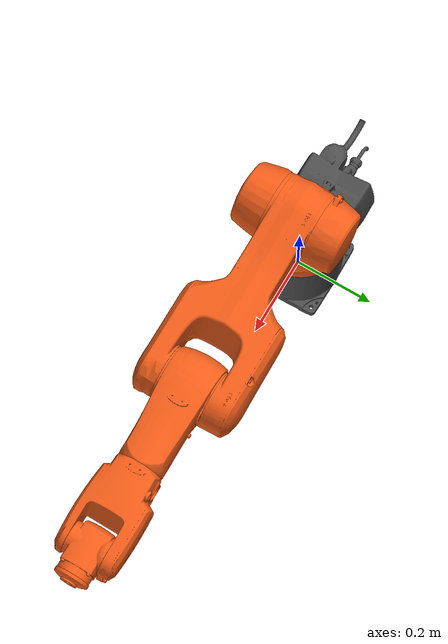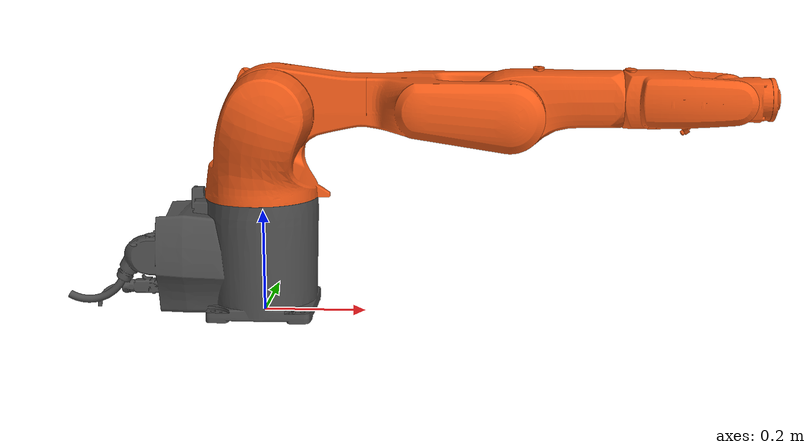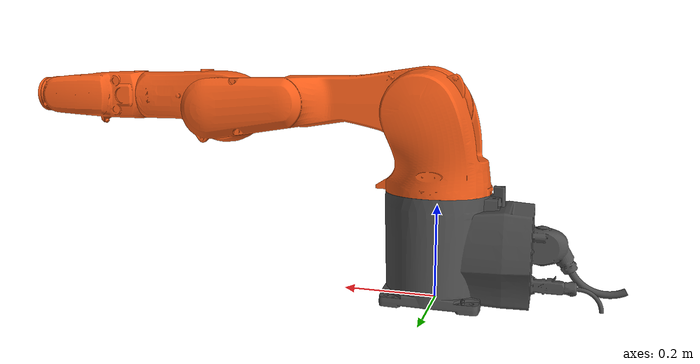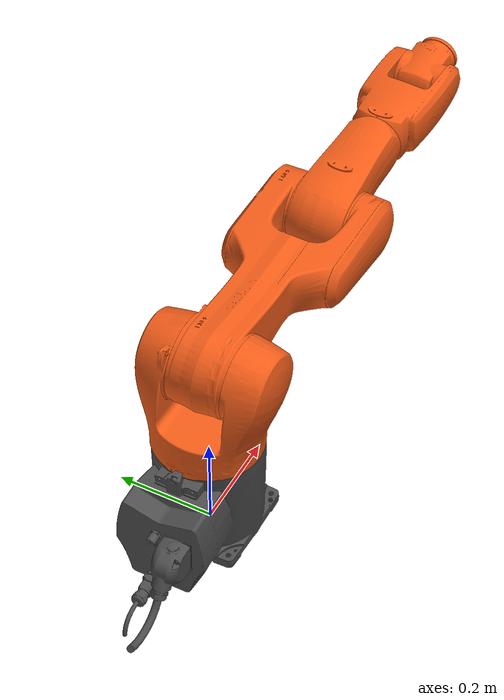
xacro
<?xml version="1.0"?>
<robot xmlns:xacro="http://www.ros.org/wiki/xacro" name="kr6_base">
    <xacro:arg name="initial_positions_file" default="$(find kr6_base_moveit_config)/config/initial_positions.yaml" />

    <!-- Import kr6_base urdf file -->
    <xacro:include filename="$(find kr6_base_description)/urdf/kr6_base.xacro" />

    <!-- Import control_xacro -->
    <xacro:include filename="$(find kr6_base_moveit_config)/config/kr6_base.ros2_control.xacro" />

    <xacro:kr6_base_ros2_control name="IgnitionSystem" initial_positions_file="$(arg initial_positions_file)"/>

</robot>

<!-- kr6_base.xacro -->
<!-- Kuka KR 6 R900 sixx Robot -->
<robot xmlns:xacro="http://www.ros.org/wiki/xacro" name="kr6_base">

    <!-- Import all Gazebo elements -->

    <!-- materials -->
    <material name="orange">
        <color rgba="0.949 0.3608 0.098 1"/>
    </material>

    <material name="gray">
        <color rgba="0.3 0.3 0.3 1"/>
    </material>

    <!-- links -->
    <link name="base_link">
        <visual>
            <origin xyz="0 0 0" rpy="0 0 0"/>
            <geometry>
                <mesh filename="package://kr6_base_description/meshes/visual/base_link.stl"/>
            </geometry>
            <material name="gray"/>
        </visual>
        <collision>
            <origin xyz="0 0 0" rpy="0 0 0"/>
            <geometry>
                <mesh filename="package://kr6_base_description/meshes/collision/base_link.stl"/>
            </geometry>
        </collision>
        <inertial>
            <origin xyz="-0.04 0.00 0.11" rpy="0 0 0"/>
            <mass value="14.6"/>
            <inertia
                ixx="0.001" ixy="0.00" ixz="0.00"
                iyy="0.001" iyz="0.00"
                izz="0.001"/>
        </inertial>
    </link>

    <link name="link_1">
        <visual>
            <origin xyz="0 0 0" rpy="0 0 0"/>
            <geometry>
                <mesh filename="package://kr6_base_description/meshes/visual/link_1.stl"/>
            </geometry>
            <material name="orange"/>
        </visual>
        <collision>
            <origin xyz="0 0 0" rpy="0 0 0"/>
            <geometry>
                <mesh filename="package://kr6_base_description/meshes/collision/link_1.stl"/>
            </geometry>
        </collision>
        <inertial>
            <origin xyz="0.00 0.00 0.10" rpy="0 0 0"/>
            <mass value="9"/>
            <inertia
                ixx="0.001" ixy="0.00" ixz="0.00"
                iyy="0.001" iyz="0.00"
                izz="0.001"/>
        </inertial>
    </link>

    <link name="link_2">
        <visual>
            <origin xyz="0 0 0" rpy="0 0 0"/>
            <geometry>
                <mesh filename="package://kr6_base_description/meshes/visual/link_2.stl"/>
            </geometry>
            <material name="orange"/>
        </visual>
        <collision>
            <origin xyz="0 0 0" rpy="0 0 0"/>
            <geometry>
                <mesh filename="package://kr6_base_description/meshes/collision/link_2.stl"/>
            </geometry>
        </collision>
        <inertial>
            <origin xyz="-0.01 0.00 0.21" rpy="0 0 0"/>
            <mass value="14.5"/>
            <inertia
                ixx="0.001" ixy="0.00" ixz="0.00"
                iyy="0.001" iyz="0.00"
                izz="0.001"/>
        </inertial>
    </link>

    <link name="link_3">
        <visual>
            <origin xyz="0 0 0" rpy="0 0 0"/>
            <geometry>
                <mesh filename="package://kr6_base_description/meshes/visual/link_3.stl"/>
            </geometry>
            <material name="orange"/>
        </visual>
        <collision>
            <origin xyz="0 0 0" rpy="0 0 0"/>
            <geometry>
                <mesh filename="package://kr6_base_description/meshes/collision/link_3.stl"/>
            </geometry>
        </collision>
        <inertial>
            <origin xyz="0.05 0.00 0.01" rpy="0 0 0"/>
            <mass value="6"/>
            <inertia
                ixx="0.001" ixy="0.00" ixz="0.00"
                iyy="0.001" iyz="0.00"
                izz="0.001"/>
        </inertial>
    </link>

    <link name="link_4">
        <visual>
            <origin xyz="0 0 0" rpy="0 0 0"/>
            <geometry>
                <mesh filename="package://kr6_base_description/meshes/visual/link_4.stl"/>
            </geometry>
            <material name="orange"/>
        </visual>
        <collision>
            <origin xyz="0 0 0" rpy="0 0 0"/>
            <geometry>
                <mesh filename="package://kr6_base_description/meshes/collision/link_4.stl"/>
            </geometry>
        </collision>
        <inertial>
            <origin xyz="0.09 0.00 0.00" rpy="0 0 0"/>
            <mass value="3.7"/>
            <inertia
                ixx="0.001" ixy="0.00" ixz="0.00"
                iyy="0.001" iyz="0.00"
                izz="0.001"/>
        </inertial>
    </link>

    <link name="link_5">
        <visual>
            <origin xyz="0 0 0" rpy="0 0 0"/>
            <geometry>
                <mesh filename="package://kr6_base_description/meshes/visual/link_5.stl"/>
            </geometry>
            <material name="orange"/>
        </visual>
        <collision>
            <origin xyz="0 0 0" rpy="0 0 0"/>
            <geometry>
                <mesh filename="package://kr6_base_description/meshes/collision/link_5.stl"/>
            </geometry>
        </collision>
        <inertial>
            <origin xyz="0.01 0.00 0.00" rpy="0 0 0"/>
            <mass value="1.1"/>
            <inertia
                ixx="0.0000008" ixy="0.00" ixz="0.00"
                iyy="0.0000005" iyz="0.00"
                izz="0.0000004"/>
        </inertial>
    </link>

    <link name="link_6">
        <visual>
            <origin xyz="0 0 0" rpy="0 0 0"/>
            <geometry>
                <mesh filename="package://kr6_base_description/meshes/visual/link_6.stl"/>
            </geometry>
            <material name="orange"/>
        </visual>
        <collision>
            <origin xyz="0 0 0" rpy="0 0 0"/>
            <geometry>
                <mesh filename="package://kr6_base_description/meshes/collision/link_6.stl"/>
            </geometry>
        </collision>
        <inertial>
            <origin xyz="0.01 0.00 0.00" rpy="0 0 0"/>
            <mass value="0.1"/>
            <inertia
                ixx="0.000000004" ixy="0.00" ixz="0.00"
                iyy="0.00000003" iyz="0.00"
                izz="0.00000003"/>
        </inertial>
    </link>

    <!-- joints -->

    <joint name="joint_1" type="revolute">
        <origin xyz="0 0 0.230" rpy="0 0 0"/>
        <parent link="base_link"/>
        <child link="link_1"/>
        <axis xyz="0 0 -1"/>
        <limit lower="${radians(-170)}" upper="${radians(170)}" effort="1000.0" velocity="${radians(360)}"/>
        <dynamics damping="0.7"/>
    </joint>

    <joint name="joint_2" type="revolute">
        <origin xyz="0.025 0 0.170" rpy="0 ${radians(90)} 0"/>
        <parent link="link_1"/>
        <child link="link_2"/>
        <axis xyz="0 1 0"/>
        <limit lower="${radians(-190)}" upper="${radians(45)}" effort="1000.0" velocity="${radians(300)}"/>
        <dynamics damping="0.7"/>
    </joint>
    <joint name="joint_3" type="revolute">
        <origin xyz="0 0 0.455" rpy="0 ${radians(-90)} 0"/>
        <parent link="link_2"/>
        <child link="link_3"/>
        <axis xyz="0 1 0"/>
        <limit lower="${radians(-120)}" upper="${radians(156)}" effort="1000.0" velocity="${radians(360)}"/>
        <dynamics damping="0.7"/>
    </joint>
    <joint name="joint_4" type="revolute">
        <origin xyz="0.215 0 0.025" rpy="0 0 0"/>
        <parent link="link_3"/>
        <child link="link_4"/>
        <axis xyz="-1 0 0"/>
        <limit lower="${radians(-185)}" upper="${radians(185)}" effort="1000.0" velocity="${radians(381)}"/>
        <dynamics damping="0.7"/>
    </joint>
    <joint name="joint_5" type="revolute">
        <origin xyz="0.205 0 0" rpy="0 0 0"/>
        <parent link="link_4"/>
        <child link="link_5"/>
        <axis xyz="0 1 0"/>
        <limit lower="${radians(-120)}" upper="${radians(120)}" effort="1000.0" velocity="${radians(388)}"/>
        <dynamics damping="0.7"/>
    </joint>
    <joint name="joint_6" type="revolute">
        <origin xyz="0.072 0 0" rpy="0 0 0"/>
        <parent link="link_5"/>
        <child link="link_6"/>
        <axis xyz="-1 0 0"/>
        <limit lower="${radians(-350)}" upper="${radians(350)}" effort="1000.0" velocity="${radians(615)}"/>
        <dynamics damping="0.7"/>
    </joint>

    <!-- world frame for Gazebo -->
    <link name="world"/>
    <joint name="fixed" type="fixed">
        <origin xyz="0 0 0" rpy="0 0 0"/>
        <parent link="world"/>
        <child link="base_link"/>
    </joint>

    <!-- 'flange' frame -->
    <link name="flange"/>
    <joint name="joint_6-flange" type="fixed">
        <origin xyz="0.018 0 0" rpy="0 0 0"/>
        <parent link="link_6"/>
        <child link="flange"/>
    </joint>

    <!-- 'tool0' frame -->
    <link name="tool0"/>
    <joint name="flange-tool0" type="fixed">
        <origin xyz="0 0 0" rpy="0 0 0"/>
        <parent link="flange"/>
        <child link="tool0"/>
    </joint>

    <!-- Gazebo plugins -->
    <gazebo>
        <plugin filename="libign_ros2_control-system.so" name="ign_ros2_control::IgnitionROS2ControlPlugin">
            <robot_param>robot_description</robot_param>
            <robot_param_node>robot_state_publisher</robot_param_node>
            <parameters>$(find kr6_base_moveit_config)/config/ros2_controllers.yaml</parameters>
        </plugin>
    </gazebo>

</robot>
